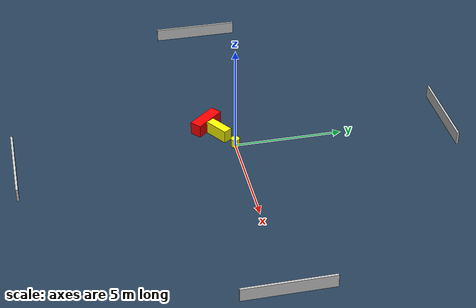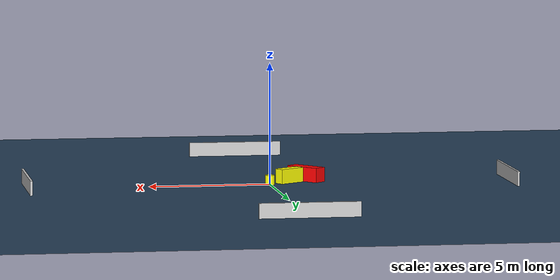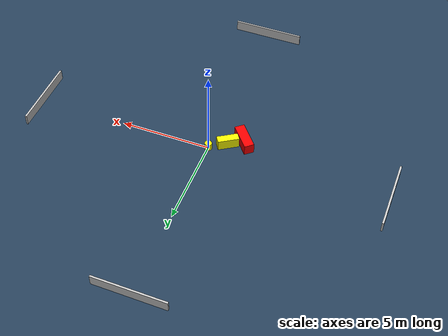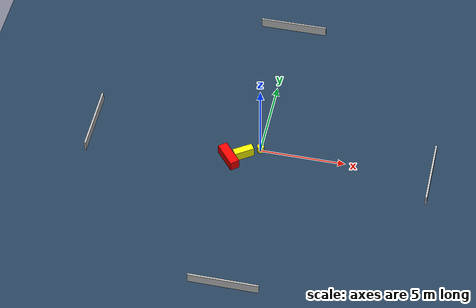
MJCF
<?xml version="1.0" ?>
<mujoco model="generated_environment">
  <option timestep="0.01" integrator="RK4" cone="elliptic"/>
  <default>
    <geom density="1"/>
  </default>
  <asset>
    <texture builtin="gradient" height="3072" name="skybox" rgb1="0.3 0.5 0.7" rgb2="0 0 0" type="skybox" width="512"/>
    <texture builtin="checker" height="300" name="groundplane" rgb1="0.2 0.3 0.4" rgb2="0.1 0.2 0.3" type="2d" width="300"/>
    <material name="groundplane" reflectance="0.2" texrepeat="5 5" texture="groundplane"/>
  </asset>
  <worldbody>
    <light dir="0 0 -1" directional="true" pos="0 0 1.5"/>
    <geom condim="3" friction="0.5 0.005 0.001" material="groundplane" name="floor" pos="0 0 0" size="0 0 0.05" type="plane"/>
    <body name="walls">
      <geom name="wall_1" condim="4" pos="-10.0 0.0 0.3" rgba="0.800000011920929 0.800000011920929 0.800000011920929 1.0" size="0.05 2.0 0.3" type="box"/>
      <geom name="wall_2" condim="4" pos="10.0 0.0 0.3" rgba="0.800000011920929 0.800000011920929 0.800000011920929 1.0" size="0.05 2.0 0.3" type="box"/>
      <geom name="wall_3" condim="4" pos="0.0 -10.0 0.3" rgba="0.800000011920929 0.800000011920929 0.800000011920929 1.0" size="2.0 0.05 0.3" type="box"/>
      <geom name="wall_4" condim="4" pos="0.0 10.0 0.3" rgba="0.800000011920929 0.800000011920929 0.800000011920929 1.0" size="2.0 0.05 0.3" type="box"/>
    </body>
    <body name="robot">
      <joint name="joint_x" type="slide" pos="0 0 0" axis="1 0 0"/>
      <joint name="joint_y" type="slide" pos="0 0 0" axis="0 1 0"/>
      <geom name="robot" type="cylinder" pos="0.0 0.0 0.2" size="0.2 0.2 0.0" mass="5.0" friction="1.0 0.005 0.0001" condim="4" rgba="1.0 1.0 0.0 1.0"/>
    </body>
    <body name="obstacle_1_movable">
      <geom name="obstacle_1_movable" condim="4" pos="-0.903312052835786 -0.5739770997834259 0.3" euler="0 0 33.28242623385534" friction="0.0 0.005 0.001" rgba="1.0 1.0 0.0 1.0" size="0.5872928710057763 0.21100365760794237 0.3" type="box" mass="0.1"/>
      <joint type="free"/>
    </body>
    <body name="obstacle_2_static">
      <geom name="obstacle_2_static" condim="4" pos="-1.6696399103919382 -1.0427637567122778 0.3" euler="0 0 310.2823107731291" friction="0.0 0.005 0.001" rgba="1.0 0.0 0.0 1.0" size="0.7741558249053855 0.27433757824546445 0.3" type="box"/>
    </body>
  </worldbody>
  <actuator>
    <motor name="actuator_x" joint="joint_x" gear="1" ctrlrange="-1 1"/>
    <motor name="actuator_y" joint="joint_y" gear="1" ctrlrange="-1 1"/>
  </actuator>
</mujoco>
